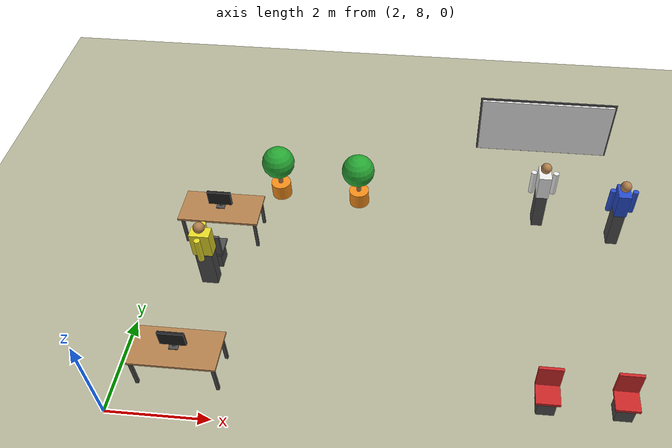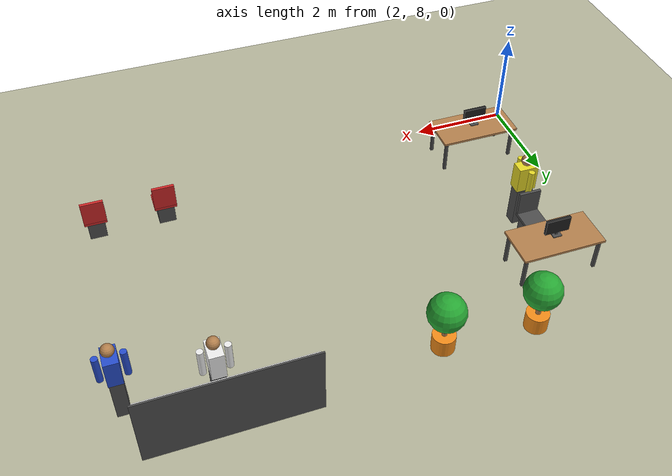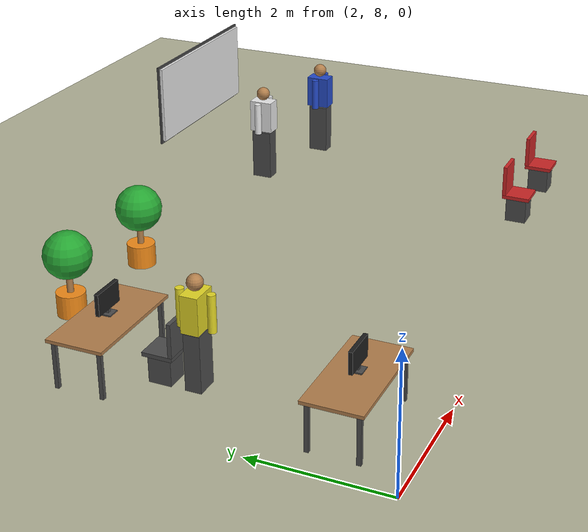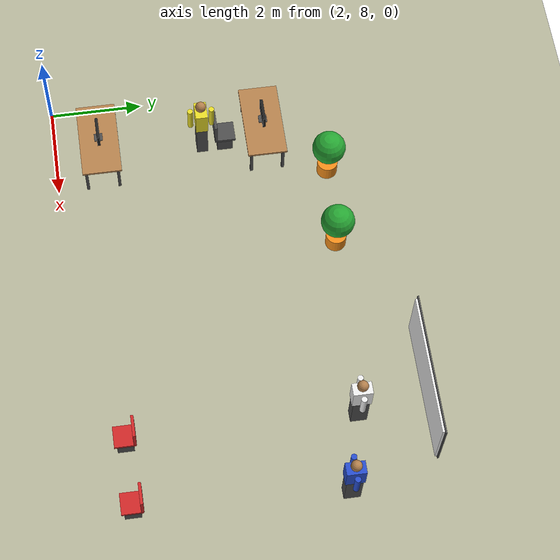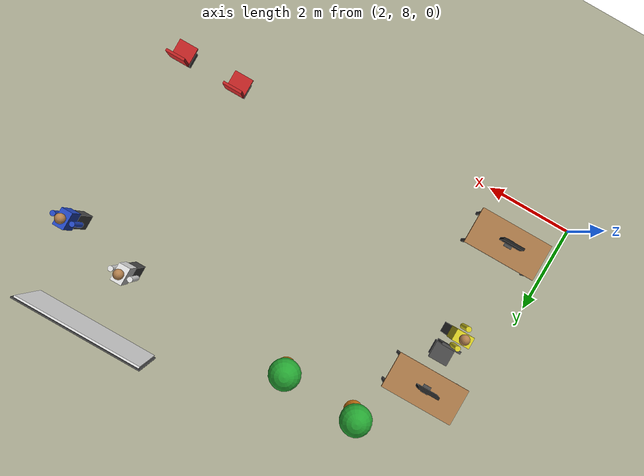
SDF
<sdf version="1.6">
 <world name="smart_building">
  <model name="ground_plane">
   <static>true</static>
   <link name="link">
    <collision name="collision">
     <geometry><plane><normal>0 0 1</normal><size>100 100</size></plane></geometry>
     <surface><friction><ode><mu>1.0</mu><mu2>1.0</mu2></ode></friction></surface>
    </collision>
    <visual name="visual">
     <geometry><plane><normal>0 0 1</normal><size>100 100</size></plane></geometry>
     <material>
      <script><uri>file://media/materials/scripts/gazebo.material</uri><name>Gazebo/Residential</name></script>
     </material>
    </visual>
   </link>
  </model>
  <model name="office_desk_5">
   <static>true</static>
   <pose>3.2000 9.0000 0.0000 0.0000 0.0000 0.0000</pose>
   <link name="link_0">
    <pose>0.0000 0.0000 0.7250 0.0000 0.0000 0.0000</pose>
    <collision name="link_0_collision">
     <geometry><box><size>1.7000 0.8500 0.0500</size></box></geometry>
    </collision>
    <visual name="link_0_visual">
     <geometry><box><size>1.7000 0.8500 0.0500</size></box></geometry>
     <material>
      <script><uri>file://media/materials/scripts/gazebo.material</uri><name>Gazebo/Wood</name></script>
     </material>
    </visual>
   </link>
   <link name="link_1">
    <pose>-0.7700 -0.3450 0.3500 0.0000 0.0000 0.0000</pose>
    <collision name="link_1_collision">
     <geometry><box><size>0.0600 0.0600 0.7000</size></box></geometry>
    </collision>
    <visual name="link_1_visual">
     <geometry><box><size>0.0600 0.0600 0.7000</size></box></geometry>
     <material>
      <script><uri>file://media/materials/scripts/gazebo.material</uri><name>Gazebo/DarkGrey</name></script>
     </material>
    </visual>
   </link>
   <link name="link_2">
    <pose>-0.7700 0.3450 0.3500 0.0000 0.0000 0.0000</pose>
    <collision name="link_2_collision">
     <geometry><box><size>0.0600 0.0600 0.7000</size></box></geometry>
    </collision>
    <visual name="link_2_visual">
     <geometry><box><size>0.0600 0.0600 0.7000</size></box></geometry>
     <material>
      <script><uri>file://media/materials/scripts/gazebo.material</uri><name>Gazebo/DarkGrey</name></script>
     </material>
    </visual>
   </link>
   <link name="link_3">
    <pose>0.7700 -0.3450 0.3500 0.0000 0.0000 0.0000</pose>
    <collision name="link_3_collision">
     <geometry><box><size>0.0600 0.0600 0.7000</size></box></geometry>
    </collision>
    <visual name="link_3_visual">
     <geometry><box><size>0.0600 0.0600 0.7000</size></box></geometry>
     <material>
      <script><uri>file://media/materials/scripts/gazebo.material</uri><name>Gazebo/DarkGrey</name></script>
     </material>
    </visual>
   </link>
   <link name="link_4">
    <pose>0.7700 0.3450 0.3500 0.0000 0.0000 0.0000</pose>
    <collision name="link_4_collision">
     <geometry><box><size>0.0600 0.0600 0.7000</size></box></geometry>
    </collision>
    <visual name="link_4_visual">
     <geometry><box><size>0.0600 0.0600 0.7000</size></box></geometry>
     <material>
      <script><uri>file://media/materials/scripts/gazebo.material</uri><name>Gazebo/DarkGrey</name></script>
     </material>
    </visual>
   </link>
   <link name="link_5">
    <pose>0.0000 0.0000 1.0300 0.0000 0.0000 0.0000</pose>
    <collision name="link_5_collision">
     <geometry><box><size>0.5000 0.0600 0.3200</size></box></geometry>
    </collision>
    <visual name="link_5_visual">
     <geometry><box><size>0.5000 0.0600 0.3200</size></box></geometry>
     <material>
      <script><uri>file://media/materials/scripts/gazebo.material</uri><name>Gazebo/FlatBlack</name></script>
     </material>
    </visual>
   </link>
   <link name="link_6">
    <pose>0.0000 0.0000 0.8100 0.0000 0.0000 0.0000</pose>
    <collision name="link_6_collision">
     <geometry><box><size>0.1800 0.1800 0.0200</size></box></geometry>
    </collision>
    <visual name="link_6_visual">
     <geometry><box><size>0.1800 0.1800 0.0200</size></box></geometry>
     <material>
      <script><uri>file://media/materials/scripts/gazebo.material</uri><name>Gazebo/DarkGrey</name></script>
     </material>
    </visual>
   </link>
   <link name="link_7">
    <pose>0.0000 0.0000 0.8700 0.0000 0.0000 0.0000</pose>
    <collision name="link_7_collision">
     <geometry><box><size>0.0500 0.0500 0.1200</size></box></geometry>
    </collision>
    <visual name="link_7_visual">
     <geometry><box><size>0.0500 0.0500 0.1200</size></box></geometry>
     <material>
      <script><uri>file://media/materials/scripts/gazebo.material</uri><name>Gazebo/DarkGrey</name></script>
     </material>
    </visual>
   </link>
  </model>
  <model name="office_desk_8">
   <static>true</static>
   <pose>3.2000 12.6000 0.0000 0.0000 0.0000 0.0000</pose>
   <link name="link_0">
    <pose>0.0000 0.0000 0.7250 0.0000 0.0000 0.0000</pose>
    <collision name="link_0_collision">
     <geometry><box><size>1.7000 0.8500 0.0500</size></box></geometry>
    </collision>
    <visual name="link_0_visual">
     <geometry><box><size>1.7000 0.8500 0.0500</size></box></geometry>
     <material>
      <script><uri>file://media/materials/scripts/gazebo.material</uri><name>Gazebo/Wood</name></script>
     </material>
    </visual>
   </link>
   <link name="link_1">
    <pose>-0.7700 -0.3450 0.3500 0.0000 0.0000 0.0000</pose>
    <collision name="link_1_collision">
     <geometry><box><size>0.0600 0.0600 0.7000</size></box></geometry>
    </collision>
    <visual name="link_1_visual">
     <geometry><box><size>0.0600 0.0600 0.7000</size></box></geometry>
     <material>
      <script><uri>file://media/materials/scripts/gazebo.material</uri><name>Gazebo/DarkGrey</name></script>
     </material>
    </visual>
   </link>
   <link name="link_2">
    <pose>-0.7700 0.3450 0.3500 0.0000 0.0000 0.0000</pose>
    <collision name="link_2_collision">
     <geometry><box><size>0.0600 0.0600 0.7000</size></box></geometry>
    </collision>
    <visual name="link_2_visual">
     <geometry><box><size>0.0600 0.0600 0.7000</size></box></geometry>
     <material>
      <script><uri>file://media/materials/scripts/gazebo.material</uri><name>Gazebo/DarkGrey</name></script>
     </material>
    </visual>
   </link>
   <link name="link_3">
    <pose>0.7700 -0.3450 0.3500 0.0000 0.0000 0.0000</pose>
    <collision name="link_3_collision">
     <geometry><box><size>0.0600 0.0600 0.7000</size></box></geometry>
    </collision>
    <visual name="link_3_visual">
     <geometry><box><size>0.0600 0.0600 0.7000</size></box></geometry>
     <material>
      <script><uri>file://media/materials/scripts/gazebo.material</uri><name>Gazebo/DarkGrey</name></script>
     </material>
    </visual>
   </link>
   <link name="link_4">
    <pose>0.7700 0.3450 0.3500 0.0000 0.0000 0.0000</pose>
    <collision name="link_4_collision">
     <geometry><box><size>0.0600 0.0600 0.7000</size></box></geometry>
    </collision>
    <visual name="link_4_visual">
     <geometry><box><size>0.0600 0.0600 0.7000</size></box></geometry>
     <material>
      <script><uri>file://media/materials/scripts/gazebo.material</uri><name>Gazebo/DarkGrey</name></script>
     </material>
    </visual>
   </link>
   <link name="link_5">
    <pose>0.0000 0.0000 1.0300 0.0000 0.0000 0.0000</pose>
    <collision name="link_5_collision">
     <geometry><box><size>0.5000 0.0600 0.3200</size></box></geometry>
    </collision>
    <visual name="link_5_visual">
     <geometry><box><size>0.5000 0.0600 0.3200</size></box></geometry>
     <material>
      <script><uri>file://media/materials/scripts/gazebo.material</uri><name>Gazebo/FlatBlack</name></script>
     </material>
    </visual>
   </link>
   <link name="link_6">
    <pose>0.0000 0.0000 0.8100 0.0000 0.0000 0.0000</pose>
    <collision name="link_6_collision">
     <geometry><box><size>0.1800 0.1800 0.0200</size></box></geometry>
    </collision>
    <visual name="link_6_visual">
     <geometry><box><size>0.1800 0.1800 0.0200</size></box></geometry>
     <material>
      <script><uri>file://media/materials/scripts/gazebo.material</uri><name>Gazebo/DarkGrey</name></script>
     </material>
    </visual>
   </link>
   <link name="link_7">
    <pose>0.0000 0.0000 0.8700 0.0000 0.0000 0.0000</pose>
    <collision name="link_7_collision">
     <geometry><box><size>0.0500 0.0500 0.1200</size></box></geometry>
    </collision>
    <visual name="link_7_visual">
     <geometry><box><size>0.0500 0.0500 0.1200</size></box></geometry>
     <material>
      <script><uri>file://media/materials/scripts/gazebo.material</uri><name>Gazebo/DarkGrey</name></script>
     </material>
    </visual>
   </link>
  </model>
  <model name="office_chair_8">
   <static>true</static>
   <pose>3.2000 11.7500 0.0000 0.0000 0.0000 0.0000</pose>
   <link name="link_0">
    <pose>0.0000 0.0000 0.4400 0.0000 0.0000 0.0000</pose>
    <collision name="link_0_collision">
     <geometry><box><size>0.4500 0.4500 0.0600</size></box></geometry>
    </collision>
    <visual name="link_0_visual">
     <geometry><box><size>0.4500 0.4500 0.0600</size></box></geometry>
     <material>
      <script><uri>file://media/materials/scripts/gazebo.material</uri><name>Gazebo/DarkGrey</name></script>
     </material>
    </visual>
   </link>
   <link name="link_1">
    <pose>0.0000 -0.2000 0.7200 0.0000 0.0000 0.0000</pose>
    <collision name="link_1_collision">
     <geometry><box><size>0.4500 0.0600 0.5000</size></box></geometry>
    </collision>
    <visual name="link_1_visual">
     <geometry><box><size>0.4500 0.0600 0.5000</size></box></geometry>
     <material>
      <script><uri>file://media/materials/scripts/gazebo.material</uri><name>Gazebo/DarkGrey</name></script>
     </material>
    </visual>
   </link>
   <link name="link_2">
    <pose>0.0000 0.0000 0.2100 0.0000 0.0000 0.0000</pose>
    <collision name="link_2_collision">
     <geometry><box><size>0.3400 0.3400 0.4200</size></box></geometry>
    </collision>
    <visual name="link_2_visual">
     <geometry><box><size>0.3400 0.3400 0.4200</size></box></geometry>
     <material>
      <script><uri>file://media/materials/scripts/gazebo.material</uri><name>Gazebo/DarkGrey</name></script>
     </material>
    </visual>
   </link>
  </model>
  <model name="person_office_2">
   <static>true</static>
   <pose>3.2000 11.2500 0.0000 0.0000 0.0000 0.0000</pose>
   <link name="link_0">
    <pose>0.0000 0.0000 0.4250 0.0000 0.0000 0.0000</pose>
    <collision name="link_0_collision">
     <geometry><box><size>0.3400 0.2400 0.8500</size></box></geometry>
    </collision>
    <visual name="link_0_visual">
     <geometry><box><size>0.3400 0.2400 0.8500</size></box></geometry>
     <material>
      <script><uri>file://media/materials/scripts/gazebo.material</uri><name>Gazebo/DarkGrey</name></script>
     </material>
    </visual>
   </link>
   <link name="link_1">
    <pose>0.0000 0.0000 1.1500 0.0000 0.0000 0.0000</pose>
    <collision name="link_1_collision">
     <geometry><box><size>0.4000 0.2600 0.5500</size></box></geometry>
    </collision>
    <visual name="link_1_visual">
     <geometry><box><size>0.4000 0.2600 0.5500</size></box></geometry>
     <material>
      <script><uri>file://media/materials/scripts/gazebo.material</uri><name>Gazebo/Yellow</name></script>
     </material>
    </visual>
   </link>
   <link name="link_2">
    <pose>0.0000 0.2300 1.1500 0.0000 0.0000 0.0000</pose>
    <collision name="link_2_collision">
     <geometry><cylinder><radius>0.0600</radius><length>0.5500</length></cylinder></geometry>
    </collision>
    <visual name="link_2_visual">
     <geometry><cylinder><radius>0.0600</radius><length>0.5500</length></cylinder></geometry>
     <material>
      <script><uri>file://media/materials/scripts/gazebo.material</uri><name>Gazebo/Yellow</name></script>
     </material>
    </visual>
   </link>
   <link name="link_3">
    <pose>0.0000 -0.2300 1.1500 0.0000 0.0000 0.0000</pose>
    <collision name="link_3_collision">
     <geometry><cylinder><radius>0.0600</radius><length>0.5500</length></cylinder></geometry>
    </collision>
    <visual name="link_3_visual">
     <geometry><cylinder><radius>0.0600</radius><length>0.5500</length></cylinder></geometry>
     <material>
      <script><uri>file://media/materials/scripts/gazebo.material</uri><name>Gazebo/Yellow</name></script>
     </material>
    </visual>
   </link>
   <link name="link_4">
    <pose>0.0000 0.0000 1.5500 0.0000 0.0000 0.0000</pose>
    <collision name="link_4_collision"><geometry><sphere><radius>0.1150</radius></sphere></geometry></collision>
    <visual name="link_4_visual">
     <geometry><sphere><radius>0.1150</radius></sphere></geometry>
     <material>
      <script><uri>file://media/materials/scripts/gazebo.material</uri><name>Gazebo/Wood</name></script>
     </material>
    </visual>
   </link>
  </model>
  <model name="plant_office_a">
   <static>true</static>
   <pose>4.2000 13.9000 0.0000 0.0000 0.0000 0.0000</pose>
   <link name="link_0">
    <pose>0.0000 0.0000 0.1800 0.0000 0.0000 0.0000</pose>
    <collision name="link_0_collision">
     <geometry><cylinder><radius>0.2200</radius><length>0.3600</length></cylinder></geometry>
    </collision>
    <visual name="link_0_visual">
     <geometry><cylinder><radius>0.2200</radius><length>0.3600</length></cylinder></geometry>
     <material>
      <script><uri>file://media/materials/scripts/gazebo.material</uri><name>Gazebo/Orange</name></script>
     </material>
    </visual>
   </link>
   <link name="link_1">
    <pose>0.0000 0.0000 0.5000 0.0000 0.0000 0.0000</pose>
    <collision name="link_1_collision">
     <geometry><cylinder><radius>0.0500</radius><length>0.4000</length></cylinder></geometry>
    </collision>
    <visual name="link_1_visual">
     <geometry><cylinder><radius>0.0500</radius><length>0.4000</length></cylinder></geometry>
     <material>
      <script><uri>file://media/materials/scripts/gazebo.material</uri><name>Gazebo/Wood</name></script>
     </material>
    </visual>
   </link>
   <link name="link_2">
    <pose>0.0000 0.0000 0.9500 0.0000 0.0000 0.0000</pose>
    <collision name="link_2_collision"><geometry><sphere><radius>0.3600</radius></sphere></geometry></collision>
    <visual name="link_2_visual">
     <geometry><sphere><radius>0.3600</radius></sphere></geometry>
     <material>
      <script><uri>file://media/materials/scripts/gazebo.material</uri><name>Gazebo/Green</name></script>
     </material>
    </visual>
   </link>
  </model>
  <model name="meeting_chair_3">
   <static>true</static>
   <pose>10.0000 8.8500 0.0000 0.0000 0.0000 3.1416</pose>
   <link name="link_0">
    <pose>0.0000 0.0000 0.4400 0.0000 0.0000 0.0000</pose>
    <collision name="link_0_collision">
     <geometry><box><size>0.4500 0.4500 0.0600</size></box></geometry>
    </collision>
    <visual name="link_0_visual">
     <geometry><box><size>0.4500 0.4500 0.0600</size></box></geometry>
     <material>
      <script><uri>file://media/materials/scripts/gazebo.material</uri><name>Gazebo/RedBright</name></script>
     </material>
    </visual>
   </link>
   <link name="link_1">
    <pose>0.0000 -0.2000 0.7200 0.0000 0.0000 0.0000</pose>
    <collision name="link_1_collision">
     <geometry><box><size>0.4500 0.0600 0.5000</size></box></geometry>
    </collision>
    <visual name="link_1_visual">
     <geometry><box><size>0.4500 0.0600 0.5000</size></box></geometry>
     <material>
      <script><uri>file://media/materials/scripts/gazebo.material</uri><name>Gazebo/RedBright</name></script>
     </material>
    </visual>
   </link>
   <link name="link_2">
    <pose>0.0000 0.0000 0.2100 0.0000 0.0000 0.0000</pose>
    <collision name="link_2_collision">
     <geometry><box><size>0.3400 0.3400 0.4200</size></box></geometry>
    </collision>
    <visual name="link_2_visual">
     <geometry><box><size>0.3400 0.3400 0.4200</size></box></geometry>
     <material>
      <script><uri>file://media/materials/scripts/gazebo.material</uri><name>Gazebo/DarkGrey</name></script>
     </material>
    </visual>
   </link>
  </model>
  <model name="meeting_chair_5">
   <static>true</static>
   <pose>11.4000 8.8500 0.0000 0.0000 0.0000 3.1416</pose>
   <link name="link_0">
    <pose>0.0000 0.0000 0.4400 0.0000 0.0000 0.0000</pose>
    <collision name="link_0_collision">
     <geometry><box><size>0.4500 0.4500 0.0600</size></box></geometry>
    </collision>
    <visual name="link_0_visual">
     <geometry><box><size>0.4500 0.4500 0.0600</size></box></geometry>
     <material>
      <script><uri>file://media/materials/scripts/gazebo.material</uri><name>Gazebo/RedBright</name></script>
     </material>
    </visual>
   </link>
   <link name="link_1">
    <pose>0.0000 -0.2000 0.7200 0.0000 0.0000 0.0000</pose>
    <collision name="link_1_collision">
     <geometry><box><size>0.4500 0.0600 0.5000</size></box></geometry>
    </collision>
    <visual name="link_1_visual">
     <geometry><box><size>0.4500 0.0600 0.5000</size></box></geometry>
     <material>
      <script><uri>file://media/materials/scripts/gazebo.material</uri><name>Gazebo/RedBright</name></script>
     </material>
    </visual>
   </link>
   <link name="link_2">
    <pose>0.0000 0.0000 0.2100 0.0000 0.0000 0.0000</pose>
    <collision name="link_2_collision">
     <geometry><box><size>0.3400 0.3400 0.4200</size></box></geometry>
    </collision>
    <visual name="link_2_visual">
     <geometry><box><size>0.3400 0.3400 0.4200</size></box></geometry>
     <material>
      <script><uri>file://media/materials/scripts/gazebo.material</uri><name>Gazebo/DarkGrey</name></script>
     </material>
    </visual>
   </link>
  </model>
  <model name="meeting_whiteboard">
   <static>true</static>
   <pose>10.0000 14.8500 1.6000 0.0000 0.0000 0.0000</pose>
   <link name="link_0">
    <collision name="link_0_collision">
     <geometry><box><size>2.8000 0.0600 1.3000</size></box></geometry>
    </collision>
    <visual name="link_0_visual">
     <geometry><box><size>2.8000 0.0600 1.3000</size></box></geometry>
     <material>
      <script><uri>file://media/materials/scripts/gazebo.material</uri><name>Gazebo/White</name></script>
     </material>
    </visual>
   </link>
   <link name="link_1">
    <pose>0.0000 0.0300 0.0000 0.0000 0.0000 0.0000</pose>
    <visual name="link_1_visual">
     <geometry><box><size>2.8800 0.0300 1.3800</size></box></geometry>
     <material>
      <script><uri>file://media/materials/scripts/gazebo.material</uri><name>Gazebo/DarkGrey</name></script>
     </material>
    </visual>
   </link>
  </model>
  <model name="person_meeting_0">
   <static>true</static>
   <pose>10.0000 13.6000 0.0000 0.0000 0.0000 -1.5708</pose>
   <link name="link_0">
    <pose>0.0000 0.0000 0.4250 0.0000 0.0000 0.0000</pose>
    <collision name="link_0_collision">
     <geometry><box><size>0.3400 0.2400 0.8500</size></box></geometry>
    </collision>
    <visual name="link_0_visual">
     <geometry><box><size>0.3400 0.2400 0.8500</size></box></geometry>
     <material>
      <script><uri>file://media/materials/scripts/gazebo.material</uri><name>Gazebo/DarkGrey</name></script>
     </material>
    </visual>
   </link>
   <link name="link_1">
    <pose>0.0000 0.0000 1.1500 0.0000 0.0000 0.0000</pose>
    <collision name="link_1_collision">
     <geometry><box><size>0.4000 0.2600 0.5500</size></box></geometry>
    </collision>
    <visual name="link_1_visual">
     <geometry><box><size>0.4000 0.2600 0.5500</size></box></geometry>
     <material>
      <script><uri>file://media/materials/scripts/gazebo.material</uri><name>Gazebo/White</name></script>
     </material>
    </visual>
   </link>
   <link name="link_2">
    <pose>0.0000 0.2300 1.1500 0.0000 0.0000 0.0000</pose>
    <collision name="link_2_collision">
     <geometry><cylinder><radius>0.0600</radius><length>0.5500</length></cylinder></geometry>
    </collision>
    <visual name="link_2_visual">
     <geometry><cylinder><radius>0.0600</radius><length>0.5500</length></cylinder></geometry>
     <material>
      <script><uri>file://media/materials/scripts/gazebo.material</uri><name>Gazebo/White</name></script>
     </material>
    </visual>
   </link>
   <link name="link_3">
    <pose>0.0000 -0.2300 1.1500 0.0000 0.0000 0.0000</pose>
    <collision name="link_3_collision">
     <geometry><cylinder><radius>0.0600</radius><length>0.5500</length></cylinder></geometry>
    </collision>
    <visual name="link_3_visual">
     <geometry><cylinder><radius>0.0600</radius><length>0.5500</length></cylinder></geometry>
     <material>
      <script><uri>file://media/materials/scripts/gazebo.material</uri><name>Gazebo/White</name></script>
     </material>
    </visual>
   </link>
   <link name="link_4">
    <pose>0.0000 0.0000 1.5500 0.0000 0.0000 0.0000</pose>
    <collision name="link_4_collision"><geometry><sphere><radius>0.1150</radius></sphere></geometry></collision>
    <visual name="link_4_visual">
     <geometry><sphere><radius>0.1150</radius></sphere></geometry>
     <material>
      <script><uri>file://media/materials/scripts/gazebo.material</uri><name>Gazebo/Wood</name></script>
     </material>
    </visual>
   </link>
  </model>
  <model name="person_meeting_1">
   <static>true</static>
   <pose>11.6000 13.2000 0.0000 0.0000 0.0000 -1.5708</pose>
   <link name="link_0">
    <pose>0.0000 0.0000 0.4250 0.0000 0.0000 0.0000</pose>
    <collision name="link_0_collision">
     <geometry><box><size>0.3400 0.2400 0.8500</size></box></geometry>
    </collision>
    <visual name="link_0_visual">
     <geometry><box><size>0.3400 0.2400 0.8500</size></box></geometry>
     <material>
      <script><uri>file://media/materials/scripts/gazebo.material</uri><name>Gazebo/DarkGrey</name></script>
     </material>
    </visual>
   </link>
   <link name="link_1">
    <pose>0.0000 0.0000 1.1500 0.0000 0.0000 0.0000</pose>
    <collision name="link_1_collision">
     <geometry><box><size>0.4000 0.2600 0.5500</size></box></geometry>
    </collision>
    <visual name="link_1_visual">
     <geometry><box><size>0.4000 0.2600 0.5500</size></box></geometry>
     <material>
      <script><uri>file://media/materials/scripts/gazebo.material</uri><name>Gazebo/Blue</name></script>
     </material>
    </visual>
   </link>
   <link name="link_2">
    <pose>0.0000 0.2300 1.1500 0.0000 0.0000 0.0000</pose>
    <collision name="link_2_collision">
     <geometry><cylinder><radius>0.0600</radius><length>0.5500</length></cylinder></geometry>
    </collision>
    <visual name="link_2_visual">
     <geometry><cylinder><radius>0.0600</radius><length>0.5500</length></cylinder></geometry>
     <material>
      <script><uri>file://media/materials/scripts/gazebo.material</uri><name>Gazebo/Blue</name></script>
     </material>
    </visual>
   </link>
   <link name="link_3">
    <pose>0.0000 -0.2300 1.1500 0.0000 0.0000 0.0000</pose>
    <collision name="link_3_collision">
     <geometry><cylinder><radius>0.0600</radius><length>0.5500</length></cylinder></geometry>
    </collision>
    <visual name="link_3_visual">
     <geometry><cylinder><radius>0.0600</radius><length>0.5500</length></cylinder></geometry>
     <material>
      <script><uri>file://media/materials/scripts/gazebo.material</uri><name>Gazebo/Blue</name></script>
     </material>
    </visual>
   </link>
   <link name="link_4">
    <pose>0.0000 0.0000 1.5500 0.0000 0.0000 0.0000</pose>
    <collision name="link_4_collision"><geometry><sphere><radius>0.1150</radius></sphere></geometry></collision>
    <visual name="link_4_visual">
     <geometry><sphere><radius>0.1150</radius></sphere></geometry>
     <material>
      <script><uri>file://media/materials/scripts/gazebo.material</uri><name>Gazebo/Wood</name></script>
     </material>
    </visual>
   </link>
  </model>
  <model name="plant_meeting">
   <static>true</static>
   <pose>6.0000 13.8000 0.0000 0.0000 0.0000 0.0000</pose>
   <link name="link_0">
    <pose>0.0000 0.0000 0.1800 0.0000 0.0000 0.0000</pose>
    <collision name="link_0_collision">
     <geometry><cylinder><radius>0.2200</radius><length>0.3600</length></cylinder></geometry>
    </collision>
    <visual name="link_0_visual">
     <geometry><cylinder><radius>0.2200</radius><length>0.3600</length></cylinder></geometry>
     <material>
      <script><uri>file://media/materials/scripts/gazebo.material</uri><name>Gazebo/Orange</name></script>
     </material>
    </visual>
   </link>
   <link name="link_1">
    <pose>0.0000 0.0000 0.5000 0.0000 0.0000 0.0000</pose>
    <collision name="link_1_collision">
     <geometry><cylinder><radius>0.0500</radius><length>0.4000</length></cylinder></geometry>
    </collision>
    <visual name="link_1_visual">
     <geometry><cylinder><radius>0.0500</radius><length>0.4000</length></cylinder></geometry>
     <material>
      <script><uri>file://media/materials/scripts/gazebo.material</uri><name>Gazebo/Wood</name></script>
     </material>
    </visual>
   </link>
   <link name="link_2">
    <pose>0.0000 0.0000 0.9500 0.0000 0.0000 0.0000</pose>
    <collision name="link_2_collision"><geometry><sphere><radius>0.3600</radius></sphere></geometry></collision>
    <visual name="link_2_visual">
     <geometry><sphere><radius>0.3600</radius></sphere></geometry>
     <material>
      <script><uri>file://media/materials/scripts/gazebo.material</uri><name>Gazebo/Green</name></script>
     </material>
    </visual>
   </link>
  </model>
 </world>
</sdf>
